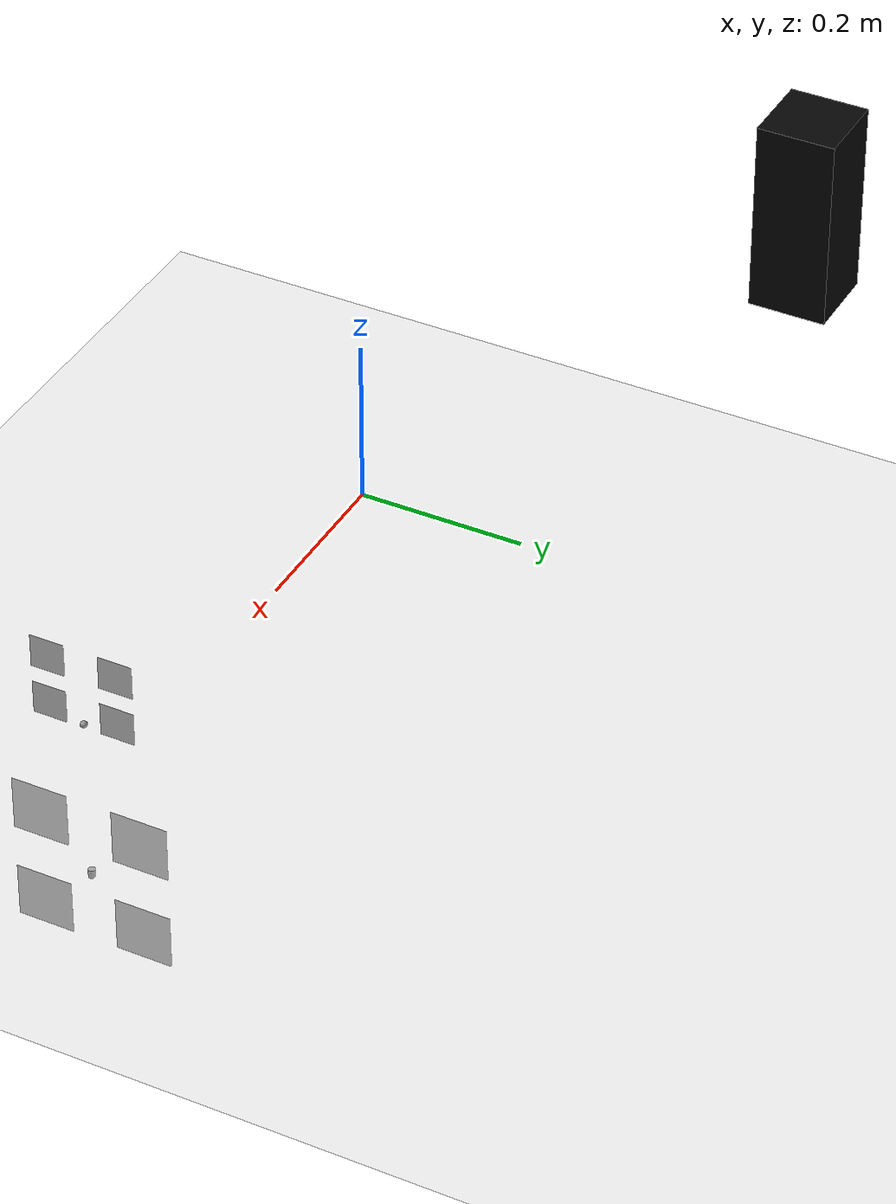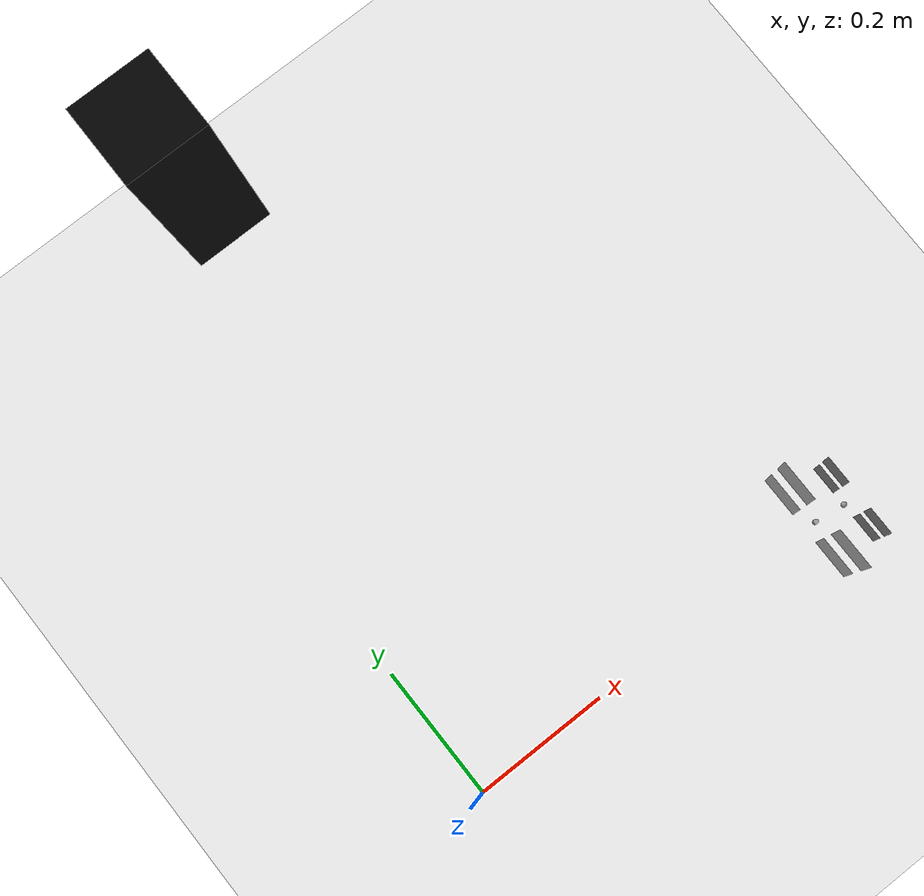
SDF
<?xml version='1.0'?>
<sdf version='1.6'>
  <world name='bulb_pose_test'>
    <include><uri>model://sun</uri></include>
    <include><uri>model://ground_plane</uri></include>
    <include><uri>model://d435i_color_camera_rig</uri><pose>0 0 0 0 0 0</pose></include>
    <include><uri>model://socket_tag_ring</uri><pose>0.60 0 -0.10 0 0 0</pose></include>
    <include><uri>model://bulb_tag_ring</uri><pose>0.60 0 0.10 0 0 0</pose></include>
    <include><uri>model://occluder</uri><pose>0.20 0.60 0.68 0 0 0</pose></include>
  </world>
</sdf>

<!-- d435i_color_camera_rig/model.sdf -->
<sdf version='1.6'>
  <model name='d435i_color_camera_rig'>
    <static>true</static>
    <pose>0 0 0 0 0 0</pose>
    <link name='camera_color_optical_frame'>
      <sensor name='d435i_color' type='camera'>
        <always_on>true</always_on>
        <update_rate>30</update_rate>
        <camera>
          <horizontal_fov>1.204277</horizontal_fov>
          <image><width>1920</width><height>1080</height><format>R8G8B8</format></image>
          <clip><near>0.10</near><far>5.0</far></clip>
        </camera>
        <plugin name='camera_controller' filename='libgazebo_ros_camera.so'>
          <robotNamespace>/camera/camera/color</robotNamespace>
          <cameraName></cameraName>
          <imageTopicName>image_raw</imageTopicName>
          <cameraInfoTopicName>camera_info</cameraInfoTopicName>
          <frameName>camera_color_optical_frame</frameName>
        </plugin>
      </sensor>
    </link>
  </model>
</sdf>

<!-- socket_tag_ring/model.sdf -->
<sdf version='1.6'>
  <model name='socket_tag_ring'>
    <static>true</static>
    <link name='socket_frame'>
      <visual name='body'><geometry><cylinder><radius>0.004</radius><length>0.010</length></cylinder></geometry><material><ambient>0.6 0.6 0.6 1</ambient><diffuse>0.6 0.6 0.6 1</diffuse></material></visual>

      <visual name='tag_100'>
          <geometry><mesh><uri>file:///home/zlhq/px4_fly_ws/src/uav_bulb_camera_pose/sim/models/socket_tag_ring/meshes/tag_100.dae</uri></mesh></geometry>
      </visual>

      <visual name='tag_101'>
          <geometry><mesh><uri>file:///home/zlhq/px4_fly_ws/src/uav_bulb_camera_pose/sim/models/socket_tag_ring/meshes/tag_101.dae</uri></mesh></geometry>
      </visual>

      <visual name='tag_102'>
          <geometry><mesh><uri>file:///home/zlhq/px4_fly_ws/src/uav_bulb_camera_pose/sim/models/socket_tag_ring/meshes/tag_102.dae</uri></mesh></geometry>
      </visual>

      <visual name='tag_103'>
          <geometry><mesh><uri>file:///home/zlhq/px4_fly_ws/src/uav_bulb_camera_pose/sim/models/socket_tag_ring/meshes/tag_103.dae</uri></mesh></geometry>
      </visual>
    </link>
  </model>
</sdf>

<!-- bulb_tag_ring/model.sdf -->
<sdf version='1.6'>
  <model name='bulb_tag_ring'>
    <static>true</static>
    <link name='bulb_frame'>
      <visual name='body'><geometry><sphere><radius>0.004</radius></sphere></geometry><material><ambient>0.6 0.6 0.6 1</ambient><diffuse>0.6 0.6 0.6 1</diffuse></material></visual>

      <visual name='tag_200'>
          <geometry><mesh><uri>file:///home/zlhq/px4_fly_ws/src/uav_bulb_camera_pose/sim/models/bulb_tag_ring/meshes/tag_200.dae</uri></mesh></geometry>
      </visual>

      <visual name='tag_201'>
          <geometry><mesh><uri>file:///home/zlhq/px4_fly_ws/src/uav_bulb_camera_pose/sim/models/bulb_tag_ring/meshes/tag_201.dae</uri></mesh></geometry>
      </visual>

      <visual name='tag_202'>
          <geometry><mesh><uri>file:///home/zlhq/px4_fly_ws/src/uav_bulb_camera_pose/sim/models/bulb_tag_ring/meshes/tag_202.dae</uri></mesh></geometry>
      </visual>

      <visual name='tag_203'>
          <geometry><mesh><uri>file:///home/zlhq/px4_fly_ws/src/uav_bulb_camera_pose/sim/models/bulb_tag_ring/meshes/tag_203.dae</uri></mesh></geometry>
      </visual>
    </link>
  </model>
</sdf>

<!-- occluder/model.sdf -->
<sdf version='1.6'><model name='occluder'><static>true</static><link name='link'><visual name='v'><geometry><box><size>0.08 0.08 0.20</size></box></geometry><material><ambient>0.02 0.02 0.02 1</ambient><diffuse>0.02 0.02 0.02 1</diffuse></material></visual><collision name='c'><geometry><box><size>0.08 0.08 0.20</size></box></geometry></collision></link></model></sdf>
